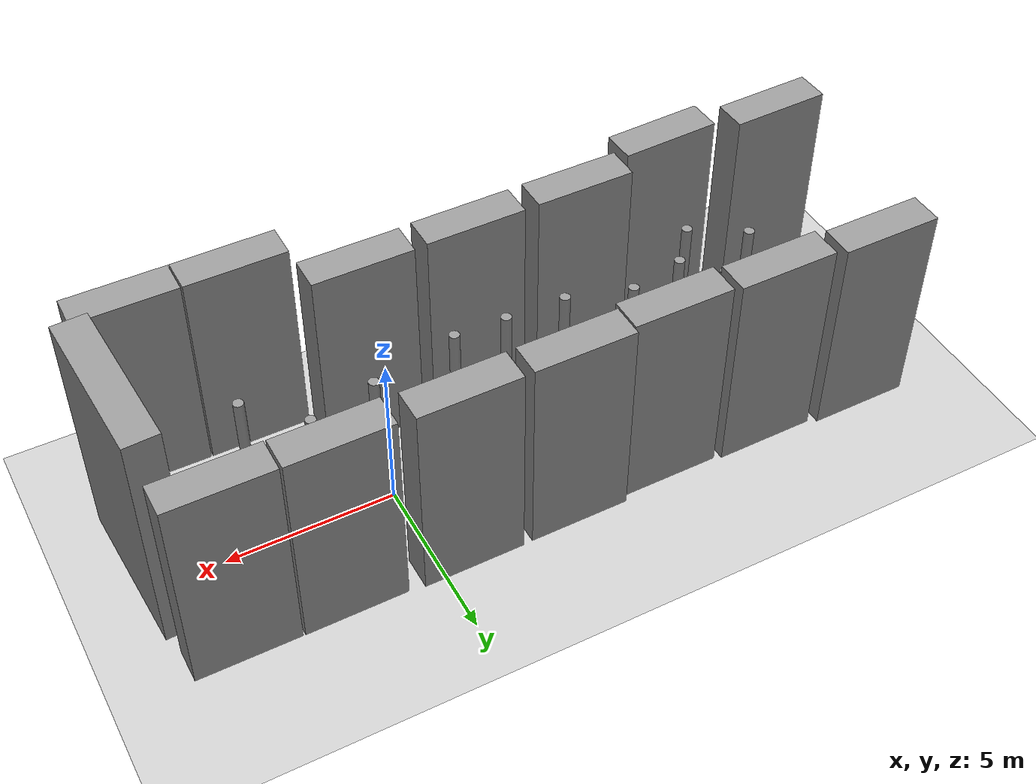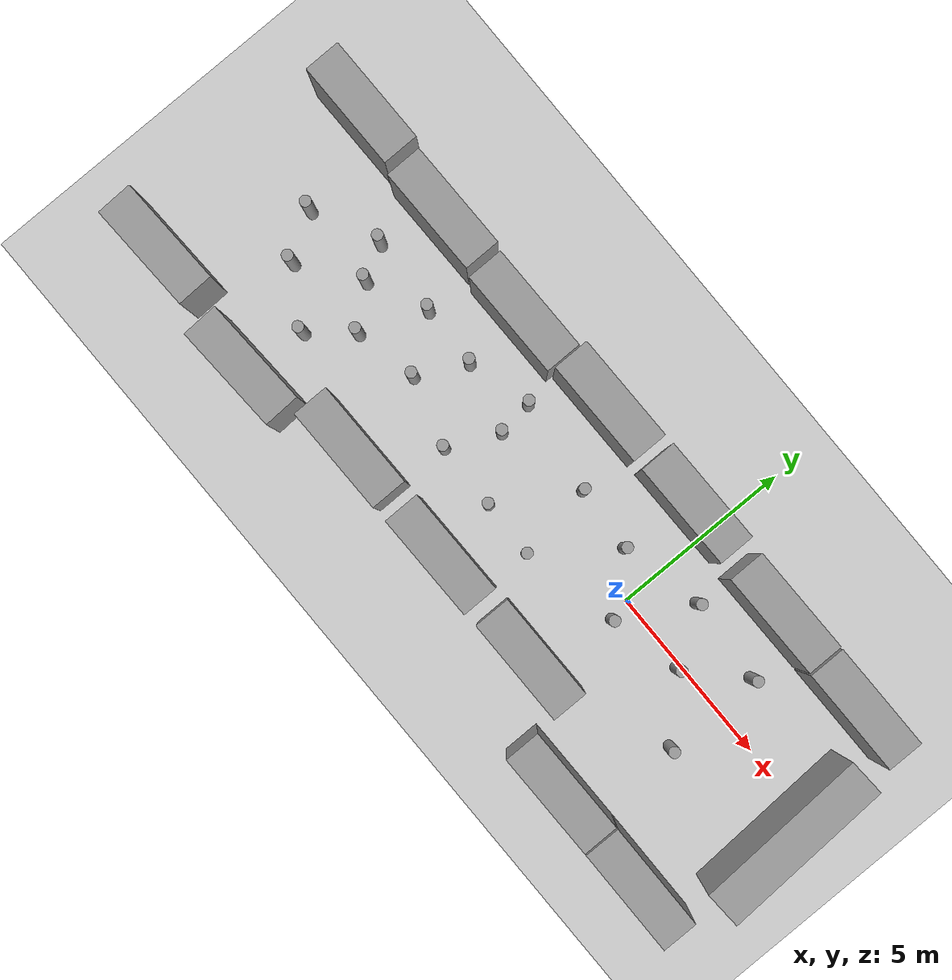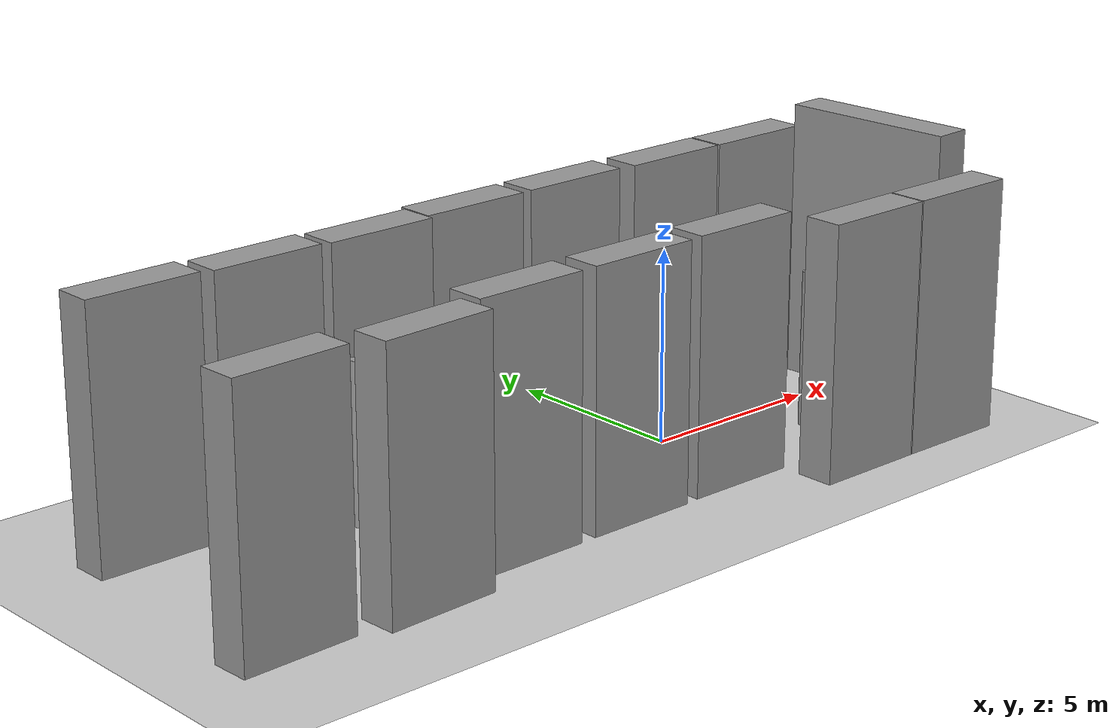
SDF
<sdf version="1.7">
 <world name="default">
  <model name="ground_plane">
   <static>1</static>
   <link name="link">
    <collision name="collision">
     <geometry><plane><normal>0 0 1</normal><size>100 100</size></plane></geometry>
     <surface>
      <contact><collide_bitmask>65535</collide_bitmask></contact>
      <friction><ode><mu>100</mu><mu2>50</mu2></ode></friction>
     </surface>
    </collision>
    <visual name="visual">
     <cast_shadows>0</cast_shadows>
     <geometry><plane><normal>0 0 1</normal><size>100 100</size></plane></geometry>
     <material>
      <script><uri>file://media/materials/scripts/gazebo.material</uri><name>Gazebo/Grey</name></script>
     </material>
    </visual>
   </link>
  </model>
  <gravity>0 0 -9.8</gravity>
  <magnetic_field>6e-06 2.3e-05 -4.2e-05</magnetic_field>
  <atmosphere type="adiabatic"/>
  <physics type="ode">
   <max_step_size>0.001</max_step_size>
   <real_time_factor>1</real_time_factor>
   <real_time_update_rate>1000</real_time_update_rate>
  </physics>
  <scene><ambient>0.4 0.4 0.4 1</ambient><background>0.7 0.7 0.7 1</background><shadows>1</shadows></scene>
  <spherical_coordinates>
   <surface_model>EARTH_WGS84</surface_model>
   <latitude_deg>0</latitude_deg>
   <longitude_deg>0</longitude_deg>
   <elevation>0</elevation>
   <heading_deg>0</heading_deg>
  </spherical_coordinates>
  <model name="unit_box_clone">
   <pose>2.5587 2.69503 3.24502 0 -1e-06 0.006784</pose>
   <link name="link">
    <inertial>
     <mass>1</mass>
     <inertia>
      <ixx>0.166667</ixx>
      <ixy>0</ixy>
      <ixz>0</ixz>
      <iyy>0.166667</iyy>
      <iyz>0</iyz>
      <izz>0.166667</izz>
     </inertia>
    </inertial>
    <collision name="collision"><geometry><box><size>2.97291 1 6.49004</size></box></geometry></collision>
    <visual name="visual">
     <geometry><box><size>2.97291 1 6.49004</size></box></geometry>
     <material>
      <script><name>Gazebo/Grey</name><uri>file://media/materials/scripts/gazebo.material</uri></script>
     </material>
    </visual>
   </link>
  </model>
  <model name="unit_box_clone_clone">
   <pose>5.59167 2.70093 3.24502 0 -1e-06 0.001837</pose>
   <link name="link">
    <inertial>
     <mass>1</mass>
     <inertia>
      <ixx>0.166667</ixx>
      <ixy>0</ixy>
      <ixz>0</ixz>
      <iyy>0.166667</iyy>
      <iyz>0</iyz>
      <izz>0.166667</izz>
     </inertia>
    </inertial>
    <collision name="collision"><geometry><box><size>2.97291 1 6.49004</size></box></geometry></collision>
    <visual name="visual">
     <geometry><box><size>2.97291 1 6.49004</size></box></geometry>
     <material>
      <script><name>Gazebo/Grey</name><uri>file://media/materials/scripts/gazebo.material</uri></script>
     </material>
    </visual>
   </link>
  </model>
  <model name="unit_box_clone_clone_0">
   <pose>-0.520348 -2.77164 3.24502 0 1e-06 0.001147</pose>
   <link name="link">
    <inertial>
     <mass>1</mass>
     <inertia>
      <ixx>0.166667</ixx>
      <ixy>0</ixy>
      <ixz>0</ixz>
      <iyy>0.166667</iyy>
      <iyz>0</iyz>
      <izz>0.166667</izz>
     </inertia>
    </inertial>
    <collision name="collision"><geometry><box><size>2.97291 1 6.49004</size></box></geometry></collision>
    <visual name="visual">
     <geometry><box><size>2.97291 1 6.49004</size></box></geometry>
     <material>
      <script><name>Gazebo/Grey</name><uri>file://media/materials/scripts/gazebo.material</uri></script>
     </material>
    </visual>
   </link>
  </model>
  <model name="unit_box_clone_clone_0_clone">
   <pose>2.44408 -4.2747 3.24502 0 1e-06 0.003904</pose>
   <link name="link">
    <inertial>
     <mass>1</mass>
     <inertia>
      <ixx>0.166667</ixx>
      <ixy>0</ixy>
      <ixz>0</ixz>
      <iyy>0.166667</iyy>
      <iyz>0</iyz>
      <izz>0.166667</izz>
     </inertia>
    </inertial>
    <collision name="collision"><geometry><box><size>2.97291 1 6.49004</size></box></geometry></collision>
    <visual name="visual">
     <geometry><box><size>2.97291 1 6.49004</size></box></geometry>
     <material>
      <script><name>Gazebo/Grey</name><uri>file://media/materials/scripts/gazebo.material</uri></script>
     </material>
    </visual>
   </link>
  </model>
  <model name="unit_box_clone_clone_0_clone_0">
   <pose>5.45943 -4.27486 3.24502 0 -1e-06 -0.004658</pose>
   <link name="link">
    <inertial>
     <mass>1</mass>
     <inertia>
      <ixx>0.166667</ixx>
      <ixy>0</ixy>
      <ixz>0</ixz>
      <iyy>0.166667</iyy>
      <iyz>0</iyz>
      <izz>0.166667</izz>
     </inertia>
    </inertial>
    <collision name="collision"><geometry><box><size>2.97291 1 6.49004</size></box></geometry></collision>
    <visual name="visual">
     <geometry><box><size>2.97291 1 6.49004</size></box></geometry>
     <material>
      <script><name>Gazebo/Grey</name><uri>file://media/materials/scripts/gazebo.material</uri></script>
     </material>
    </visual>
   </link>
  </model>
  <model name="unit_cylinder_clone">
   <pose>3.56228 -1.52634 2.03419 0 0 -0.060804</pose>
   <link name="link">
    <inertial>
     <mass>1</mass>
     <inertia><ixx>0.145833</ixx><ixy>0</ixy><ixz>0</ixz><iyy>0.145833</iyy><iyz>0</iyz><izz>0.125</izz></inertia>
    </inertial>
    <collision name="collision">
     <geometry><cylinder><radius>0.15453</radius><length>4.06839</length></cylinder></geometry>
    </collision>
    <visual name="visual">
     <geometry><cylinder><radius>0.15453</radius><length>4.06839</length></cylinder></geometry>
     <material>
      <script><name>Gazebo/Grey</name><uri>file://media/materials/scripts/gazebo.material</uri></script>
     </material>
    </visual>
   </link>
  </model>
  <model name="unit_cylinder_clone_0">
   <pose>3.53961 1.18714 2.03419 0 0 -0.04699</pose>
   <link name="link">
    <inertial>
     <mass>1</mass>
     <inertia><ixx>0.145833</ixx><ixy>0</ixy><ixz>0</ixz><iyy>0.145833</iyy><iyz>0</iyz><izz>0.125</izz></inertia>
    </inertial>
    <collision name="collision">
     <geometry><cylinder><radius>0.15453</radius><length>4.06839</length></cylinder></geometry>
    </collision>
    <visual name="visual">
     <geometry><cylinder><radius>0.15453</radius><length>4.06839</length></cylinder></geometry>
     <material>
      <script><name>Gazebo/Grey</name><uri>file://media/materials/scripts/gazebo.material</uri></script>
     </material>
    </visual>
   </link>
  </model>
  <model name="unit_box_0">
   <pose>6.91148 -0.713649 3.65057 0 -0 0.051224</pose>
   <link name="link">
    <inertial>
     <mass>1</mass>
     <inertia>
      <ixx>0.166667</ixx>
      <ixy>0</ixy>
      <ixz>0</ixz>
      <iyy>0.166667</iyy>
      <iyz>0</iyz>
      <izz>0.166667</izz>
     </inertia>
    </inertial>
    <collision name="collision"><geometry><box><size>1 4.71151 7.30114</size></box></geometry></collision>
    <visual name="visual">
     <geometry><box><size>1 4.71151 7.30114</size></box></geometry>
     <material>
      <script><name>Gazebo/Grey</name><uri>file://media/materials/scripts/gazebo.material</uri></script>
     </material>
    </visual>
   </link>
  </model>
  <light name="user_directional_light_0" type="directional">
   <pose>-4.64306 0.087706 1 0 -0 0</pose>
   <diffuse>0.5 0.5 0.5 1</diffuse>
   <specular>0.1 0.1 0.1 1</specular>
   <direction>0.1 0.1 -0.9</direction>
   <attenuation>
    <range>20</range>
    <constant>0.5</constant>
    <linear>0.01</linear>
    <quadratic>0.001</quadratic>
   </attenuation>
   <spot><inner_angle>0</inner_angle><outer_angle>0</outer_angle><falloff>0</falloff></spot>
  </light>
  <model name="unit_box_clone_clone_1_clone_0">
   <pose>-7.12188 2.49807 3.24502 0 -1e-06 0.005888</pose>
   <link name="link">
    <inertial>
     <mass>1</mass>
     <inertia>
      <ixx>0.166667</ixx>
      <ixy>0</ixy>
      <ixz>0</ixz>
      <iyy>0.166667</iyy>
      <iyz>0</iyz>
      <izz>0.166667</izz>
     </inertia>
    </inertial>
    <collision name="collision"><geometry><box><size>2.97291 1 6.49004</size></box></geometry></collision>
    <visual name="visual">
     <geometry><box><size>2.97291 1 6.49004</size></box></geometry>
     <material>
      <script><name>Gazebo/Grey</name><uri>file://media/materials/scripts/gazebo.material</uri></script>
     </material>
    </visual>
   </link>
  </model>
  <model name="unit_box_clone_clone_1_clone_3">
   <pose>-3.87243 -2.83099 3.24502 0 -1e-06 0.007547</pose>
   <link name="link">
    <inertial>
     <mass>1</mass>
     <inertia>
      <ixx>0.166667</ixx>
      <ixy>0</ixy>
      <ixz>0</ixz>
      <iyy>0.166667</iyy>
      <iyz>0</iyz>
      <izz>0.166667</izz>
     </inertia>
    </inertial>
    <collision name="collision"><geometry><box><size>2.97291 1 6.49004</size></box></geometry></collision>
    <visual name="visual">
     <geometry><box><size>2.97291 1 6.49004</size></box></geometry>
     <material>
      <script><name>Gazebo/Grey</name><uri>file://media/materials/scripts/gazebo.material</uri></script>
     </material>
    </visual>
   </link>
  </model>
  <model name="unit_box_clone_clone_1_clone_6">
   <pose>-14.0826 -3.35723 3.24502 1e-06 1e-06 0.032763</pose>
   <link name="link">
    <inertial>
     <mass>1</mass>
     <inertia>
      <ixx>0.166667</ixx>
      <ixy>0</ixy>
      <ixz>0</ixz>
      <iyy>0.166667</iyy>
      <iyz>0</iyz>
      <izz>0.166667</izz>
     </inertia>
    </inertial>
    <collision name="collision"><geometry><box><size>2.97291 1 6.49004</size></box></geometry></collision>
    <visual name="visual">
     <geometry><box><size>2.97291 1 6.49004</size></box></geometry>
     <material>
      <script><name>Gazebo/Grey</name><uri>file://media/materials/scripts/gazebo.material</uri></script>
     </material>
    </visual>
   </link>
  </model>
  <model name="unit_cylinder_clone_0_clone_clone_5">
   <pose>-5.44467 1.27229 2.03419 0 0 -0.058118</pose>
   <link name="link">
    <inertial>
     <mass>1</mass>
     <inertia><ixx>0.145833</ixx><ixy>0</ixy><ixz>0</ixz><iyy>0.145833</iyy><iyz>0</iyz><izz>0.125</izz></inertia>
    </inertial>
    <collision name="collision">
     <geometry><cylinder><radius>0.15453</radius><length>4.06839</length></cylinder></geometry>
    </collision>
    <visual name="visual">
     <geometry><cylinder><radius>0.15453</radius><length>4.06839</length></cylinder></geometry>
     <material>
      <script><name>Gazebo/Grey</name><uri>file://media/materials/scripts/gazebo.material</uri></script>
     </material>
    </visual>
   </link>
  </model>
  <model name="unit_cylinder_clone_0_clone_clone_10">
   <pose>-10.4795 0.094531 2.03419 0 0 -0.058911</pose>
   <link name="link">
    <inertial>
     <mass>1</mass>
     <inertia><ixx>0.145833</ixx><ixy>0</ixy><ixz>0</ixz><iyy>0.145833</iyy><iyz>0</iyz><izz>0.125</izz></inertia>
    </inertial>
    <collision name="collision">
     <geometry><cylinder><radius>0.15453</radius><length>4.06839</length></cylinder></geometry>
    </collision>
    <visual name="visual">
     <geometry><cylinder><radius>0.15453</radius><length>4.06839</length></cylinder></geometry>
     <material>
      <script><name>Gazebo/Grey</name><uri>file://media/materials/scripts/gazebo.material</uri></script>
     </material>
    </visual>
   </link>
  </model>
  <model name="unit_cylinder_clone_0_clone_clone_4_clone">
   <pose>-4.1331 -1.1358 2.03419 0 0 -0.056572</pose>
   <link name="link">
    <inertial>
     <mass>1</mass>
     <inertia><ixx>0.145833</ixx><ixy>0</ixy><ixz>0</ixz><iyy>0.145833</iyy><iyz>0</iyz><izz>0.125</izz></inertia>
    </inertial>
    <collision name="collision">
     <geometry><cylinder><radius>0.15453</radius><length>4.06839</length></cylinder></geometry>
    </collision>
    <visual name="visual">
     <geometry><cylinder><radius>0.15453</radius><length>4.06839</length></cylinder></geometry>
     <material>
      <script><name>Gazebo/Grey</name><uri>file://media/materials/scripts/gazebo.material</uri></script>
     </material>
    </visual>
   </link>
  </model>
  <model name="unit_cylinder_clone_0_clone_clone_4_clone_1">
   <pose>1.18445 1.34079 2.03419 0 0 -0.102565</pose>
   <link name="link">
    <inertial>
     <mass>1</mass>
     <inertia><ixx>0.145833</ixx><ixy>0</ixy><ixz>0</ixz><iyy>0.145833</iyy><iyz>0</iyz><izz>0.125</izz></inertia>
    </inertial>
    <collision name="collision">
     <geometry><cylinder><radius>0.15453</radius><length>4.06839</length></cylinder></geometry>
    </collision>
    <visual name="visual">
     <geometry><cylinder><radius>0.15453</radius><length>4.06839</length></cylinder></geometry>
     <material>
      <script><name>Gazebo/Grey</name><uri>file://media/materials/scripts/gazebo.material</uri></script>
     </material>
    </visual>
   </link>
  </model>
  <model name="unit_cylinder_clone_0_clone_clone_4_clone_3">
   <pose>-12.7826 0.161819 2.03419 0 0 -0.05969</pose>
   <link name="link">
    <inertial>
     <mass>1</mass>
     <inertia><ixx>0.145833</ixx><ixy>0</ixy><ixz>0</ixz><iyy>0.145833</iyy><iyz>0</iyz><izz>0.125</izz></inertia>
    </inertial>
    <collision name="collision">
     <geometry><cylinder><radius>0.15453</radius><length>4.06839</length></cylinder></geometry>
    </collision>
    <visual name="visual">
     <geometry><cylinder><radius>0.15453</radius><length>4.06839</length></cylinder></geometry>
     <material>
      <script><name>Gazebo/Grey</name><uri>file://media/materials/scripts/gazebo.material</uri></script>
     </material>
    </visual>
   </link>
  </model>
  <model name="unit_box_clone_clone_1_clone_3_clone_0">
   <pose>-10.4919 -3.62879 3.24502 -0 -1e-06 0.043505</pose>
   <link name="link">
    <inertial>
     <mass>1</mass>
     <inertia>
      <ixx>0.166667</ixx>
      <ixy>0</ixy>
      <ixz>0</ixz>
      <iyy>0.166667</iyy>
      <iyz>0</iyz>
      <izz>0.166667</izz>
     </inertia>
    </inertial>
    <collision name="collision"><geometry><box><size>2.97291 1 6.49004</size></box></geometry></collision>
    <visual name="visual">
     <geometry><box><size>2.97291 1 6.49004</size></box></geometry>
     <material>
      <script><name>Gazebo/Grey</name><uri>file://media/materials/scripts/gazebo.material</uri></script>
     </material>
    </visual>
   </link>
  </model>
  <model name="unit_cylinder_clone_0_clone_clone_1_clone_0">
   <pose>-2.55953 -1.17915 2.03419 0 0 -0.059837</pose>
   <link name="link">
    <inertial>
     <mass>1</mass>
     <inertia><ixx>0.145833</ixx><ixy>0</ixy><ixz>0</ixz><iyy>0.145833</iyy><iyz>0</iyz><izz>0.125</izz></inertia>
    </inertial>
    <collision name="collision">
     <geometry><cylinder><radius>0.15453</radius><length>4.06839</length></cylinder></geometry>
    </collision>
    <visual name="visual">
     <geometry><cylinder><radius>0.15453</radius><length>4.06839</length></cylinder></geometry>
     <material>
      <script><name>Gazebo/Grey</name><uri>file://media/materials/scripts/gazebo.material</uri></script>
     </material>
    </visual>
   </link>
  </model>
  <model name="unit_box_clone_clone_1_clone_0_clone">
   <pose>-10.2989 2.56916 3.24502 0 1e-06 0.00791</pose>
   <link name="link">
    <inertial>
     <mass>1</mass>
     <inertia>
      <ixx>0.166667</ixx>
      <ixy>0</ixy>
      <ixz>0</ixz>
      <iyy>0.166667</iyy>
      <iyz>0</iyz>
      <izz>0.166667</izz>
     </inertia>
    </inertial>
    <collision name="collision"><geometry><box><size>2.97291 1 6.49004</size></box></geometry></collision>
    <visual name="visual">
     <geometry><box><size>2.97291 1 6.49004</size></box></geometry>
     <material>
      <script><name>Gazebo/Grey</name><uri>file://media/materials/scripts/gazebo.material</uri></script>
     </material>
    </visual>
   </link>
  </model>
  <model name="unit_box_clone_clone_1_clone_0_clone_0">
   <pose>-13.5291 2.6871 3.24502 0 -1e-06 0.005083</pose>
   <link name="link">
    <inertial>
     <mass>1</mass>
     <inertia>
      <ixx>0.166667</ixx>
      <ixy>0</ixy>
      <ixz>0</ixz>
      <iyy>0.166667</iyy>
      <iyz>0</iyz>
      <izz>0.166667</izz>
     </inertia>
    </inertial>
    <collision name="collision"><geometry><box><size>2.97291 1 6.49004</size></box></geometry></collision>
    <visual name="visual">
     <geometry><box><size>2.97291 1 6.49004</size></box></geometry>
     <material>
      <script><name>Gazebo/Grey</name><uri>file://media/materials/scripts/gazebo.material</uri></script>
     </material>
    </visual>
   </link>
  </model>
  <model name="unit_box_clone_clone_1_clone_0_clone_1">
   <pose>-7.27806 -2.87242 3.24502 -0 -1e-06 0.006782</pose>
   <link name="link">
    <inertial>
     <mass>1</mass>
     <inertia>
      <ixx>0.166667</ixx>
      <ixy>0</ixy>
      <ixz>0</ixz>
      <iyy>0.166667</iyy>
      <iyz>0</iyz>
      <izz>0.166667</izz>
     </inertia>
    </inertial>
    <collision name="collision"><geometry><box><size>2.97291 1 6.49004</size></box></geometry></collision>
    <visual name="visual">
     <geometry><box><size>2.97291 1 6.49004</size></box></geometry>
     <material>
      <script><name>Gazebo/Grey</name><uri>file://media/materials/scripts/gazebo.material</uri></script>
     </material>
    </visual>
   </link>
  </model>
  <model name="unit_cylinder_clone_0_clone_clone_10_clone">
   <pose>-8.88854 0.84104 2.03419 0 0 -0.058613</pose>
   <link name="link">
    <inertial>
     <mass>1</mass>
     <inertia><ixx>0.145833</ixx><ixy>0</ixy><ixz>0</ixz><iyy>0.145833</iyy><iyz>0</iyz><izz>0.125</izz></inertia>
    </inertial>
    <collision name="collision">
     <geometry><cylinder><radius>0.15453</radius><length>4.06839</length></cylinder></geometry>
    </collision>
    <visual name="visual">
     <geometry><cylinder><radius>0.15453</radius><length>4.06839</length></cylinder></geometry>
     <material>
      <script><name>Gazebo/Grey</name><uri>file://media/materials/scripts/gazebo.material</uri></script>
     </material>
    </visual>
   </link>
  </model>
  <model name="unit_cylinder_clone_0_clone_clone_4_clone_0_clone">
   <pose>2.13221 -0.105776 2.03419 0 0 -0.062969</pose>
   <link name="link">
    <inertial>
     <mass>1</mass>
     <inertia><ixx>0.145833</ixx><ixy>0</ixy><ixz>0</ixz><iyy>0.145833</iyy><iyz>0</iyz><izz>0.125</izz></inertia>
    </inertial>
    <collision name="collision">
     <geometry><cylinder><radius>0.15453</radius><length>4.06839</length></cylinder></geometry>
    </collision>
    <visual name="visual">
     <geometry><cylinder><radius>0.15453</radius><length>4.06839</length></cylinder></geometry>
     <material>
      <script><name>Gazebo/Grey</name><uri>file://media/materials/scripts/gazebo.material</uri></script>
     </material>
    </visual>
   </link>
  </model>
  <model name="unit_cylinder_clone_0_clone_clone_4_clone_0_clone_0">
   <pose>-1.07873 0.818414 2.03419 0 0 -0.06107</pose>
   <link name="link">
    <inertial>
     <mass>1</mass>
     <inertia><ixx>0.145833</ixx><ixy>0</ixy><ixz>0</ixz><iyy>0.145833</iyy><iyz>0</iyz><izz>0.125</izz></inertia>
    </inertial>
    <collision name="collision">
     <geometry><cylinder><radius>0.15453</radius><length>4.06839</length></cylinder></geometry>
    </collision>
    <visual name="visual">
     <geometry><cylinder><radius>0.15453</radius><length>4.06839</length></cylinder></geometry>
     <material>
      <script><name>Gazebo/Grey</name><uri>file://media/materials/scripts/gazebo.material</uri></script>
     </material>
    </visual>
   </link>
  </model>
  <model name="unit_cylinder_clone_0_clone_clone_10_clone_clone_0">
   <pose>-7.193 0.78935 2.03419 0 0 -0.02038</pose>
   <link name="link">
    <inertial>
     <mass>1</mass>
     <inertia><ixx>0.145833</ixx><ixy>0</ixy><ixz>0</ixz><iyy>0.145833</iyy><iyz>0</iyz><izz>0.125</izz></inertia>
    </inertial>
    <collision name="collision">
     <geometry><cylinder><radius>0.15453</radius><length>4.06839</length></cylinder></geometry>
    </collision>
    <visual name="visual">
     <geometry><cylinder><radius>0.15453</radius><length>4.06839</length></cylinder></geometry>
     <material>
      <script><name>Gazebo/Grey</name><uri>file://media/materials/scripts/gazebo.material</uri></script>
     </material>
    </visual>
   </link>
  </model>
  <model name="unit_box_clone_clone_1_clone_0_clone_2">
   <pose>-0.861089 2.74633 3.24502 -0 1e-06 0.007396</pose>
   <link name="link">
    <inertial>
     <mass>1</mass>
     <inertia>
      <ixx>0.166667</ixx>
      <ixy>0</ixy>
      <ixz>0</ixz>
      <iyy>0.166667</iyy>
      <iyz>0</iyz>
      <izz>0.166667</izz>
     </inertia>
    </inertial>
    <collision name="collision"><geometry><box><size>2.97291 1 6.49004</size></box></geometry></collision>
    <visual name="visual">
     <geometry><box><size>2.97291 1 6.49004</size></box></geometry>
     <material>
      <script><name>Gazebo/Grey</name><uri>file://media/materials/scripts/gazebo.material</uri></script>
     </material>
    </visual>
   </link>
  </model>
  <model name="unit_box_clone_clone_1_clone_0_clone_3">
   <pose>-4.10568 2.70676 3.24502 0 -1e-06 0.006105</pose>
   <link name="link">
    <inertial>
     <mass>1</mass>
     <inertia>
      <ixx>0.166667</ixx>
      <ixy>0</ixy>
      <ixz>0</ixz>
      <iyy>0.166667</iyy>
      <iyz>0</iyz>
      <izz>0.166667</izz>
     </inertia>
    </inertial>
    <collision name="collision"><geometry><box><size>2.97291 1 6.49004</size></box></geometry></collision>
    <visual name="visual">
     <geometry><box><size>2.97291 1 6.49004</size></box></geometry>
     <material>
      <script><name>Gazebo/Grey</name><uri>file://media/materials/scripts/gazebo.material</uri></script>
     </material>
    </visual>
   </link>
  </model>
  <model name="unit_cylinder_clone_0_clone_clone_1_clone_0_clone">
   <pose>0.118252 -0.584617 2.03419 0 0 -0.086886</pose>
   <link name="link">
    <inertial>
     <mass>1</mass>
     <inertia><ixx>0.145833</ixx><ixy>0</ixy><ixz>0</ixz><iyy>0.145833</iyy><iyz>0</iyz><izz>0.125</izz></inertia>
    </inertial>
    <collision name="collision">
     <geometry><cylinder><radius>0.15453</radius><length>4.06839</length></cylinder></geometry>
    </collision>
    <visual name="visual">
     <geometry><cylinder><radius>0.15453</radius><length>4.06839</length></cylinder></geometry>
     <material>
      <script><name>Gazebo/Grey</name><uri>file://media/materials/scripts/gazebo.material</uri></script>
     </material>
    </visual>
   </link>
  </model>
  <model name="unit_cylinder_clone_0_clone_clone_1_clone_0_clone_0">
   <pose>-2.87395 0.941041 2.03419 0 0 -0.059607</pose>
   <link name="link">
    <inertial>
     <mass>1</mass>
     <inertia><ixx>0.145833</ixx><ixy>0</ixy><ixz>0</ixz><iyy>0.145833</iyy><iyz>0</iyz><izz>0.125</izz></inertia>
    </inertial>
    <collision name="collision">
     <geometry><cylinder><radius>0.15453</radius><length>4.06839</length></cylinder></geometry>
    </collision>
    <visual name="visual">
     <geometry><cylinder><radius>0.15453</radius><length>4.06839</length></cylinder></geometry>
     <material>
      <script><name>Gazebo/Grey</name><uri>file://media/materials/scripts/gazebo.material</uri></script>
     </material>
    </visual>
   </link>
  </model>
  <model name="unit_cylinder_clone_0_clone_clone_1_clone_0_clone_2">
   <pose>-10.9998 1.00017 2.03419 0 0 -0.058048</pose>
   <link name="link">
    <inertial>
     <mass>1</mass>
     <inertia><ixx>0.145833</ixx><ixy>0</ixy><ixz>0</ixz><iyy>0.145833</iyy><iyz>0</iyz><izz>0.125</izz></inertia>
    </inertial>
    <collision name="collision">
     <geometry><cylinder><radius>0.15453</radius><length>4.06839</length></cylinder></geometry>
    </collision>
    <visual name="visual">
     <geometry><cylinder><radius>0.15453</radius><length>4.06839</length></cylinder></geometry>
     <material>
      <script><name>Gazebo/Grey</name><uri>file://media/materials/scripts/gazebo.material</uri></script>
     </material>
    </visual>
   </link>
  </model>
  <model name="unit_cylinder_clone_0_clone_clone_10_clone_2">
   <pose>-5.95277 -1.08593 2.03419 0 0 -0.058512</pose>
   <link name="link">
    <inertial>
     <mass>1</mass>
     <inertia><ixx>0.145833</ixx><ixy>0</ixy><ixz>0</ixz><iyy>0.145833</iyy><iyz>0</iyz><izz>0.125</izz></inertia>
    </inertial>
    <collision name="collision">
     <geometry><cylinder><radius>0.15453</radius><length>4.06839</length></cylinder></geometry>
    </collision>
    <visual name="visual">
     <geometry><cylinder><radius>0.15453</radius><length>4.06839</length></cylinder></geometry>
     <material>
      <script><name>Gazebo/Grey</name><uri>file://media/materials/scripts/gazebo.material</uri></script>
     </material>
    </visual>
   </link>
  </model>
  <model name="unit_cylinder_clone_0_clone_clone_10_clone_clone_0_clone_0">
   <pose>-7.84694 -0.530755 2.03419 0 0 -0.020089</pose>
   <link name="link">
    <inertial>
     <mass>1</mass>
     <inertia><ixx>0.145833</ixx><ixy>0</ixy><ixz>0</ixz><iyy>0.145833</iyy><iyz>0</iyz><izz>0.125</izz></inertia>
    </inertial>
    <collision name="collision">
     <geometry><cylinder><radius>0.15453</radius><length>4.06839</length></cylinder></geometry>
    </collision>
    <visual name="visual">
     <geometry><cylinder><radius>0.15453</radius><length>4.06839</length></cylinder></geometry>
     <material>
      <script><name>Gazebo/Grey</name><uri>file://media/materials/scripts/gazebo.material</uri></script>
     </material>
    </visual>
   </link>
  </model>
  <model name="unit_cylinder_clone_0_clone_clone_10_clone_clone_0_clone_1">
   <pose>-5.3156 0.291281 2.03419 0 0 -0.020542</pose>
   <link name="link">
    <inertial>
     <mass>1</mass>
     <inertia><ixx>0.145833</ixx><ixy>0</ixy><ixz>0</ixz><iyy>0.145833</iyy><iyz>0</iyz><izz>0.125</izz></inertia>
    </inertial>
    <collision name="collision">
     <geometry><cylinder><radius>0.15453</radius><length>4.06839</length></cylinder></geometry>
    </collision>
    <visual name="visual">
     <geometry><cylinder><radius>0.15453</radius><length>4.06839</length></cylinder></geometry>
     <material>
      <script><name>Gazebo/Grey</name><uri>file://media/materials/scripts/gazebo.material</uri></script>
     </material>
    </visual>
   </link>
  </model>
  <model name="unit_cylinder_clone_0_clone_clone_4_clone_3_clone">
   <pose>-12.0376 -1.03828 2.03419 0 0 -0.059616</pose>
   <link name="link">
    <inertial>
     <mass>1</mass>
     <inertia><ixx>0.145833</ixx><ixy>0</ixy><ixz>0</ixz><iyy>0.145833</iyy><iyz>0</iyz><izz>0.125</izz></inertia>
    </inertial>
    <collision name="collision">
     <geometry><cylinder><radius>0.15453</radius><length>4.06839</length></cylinder></geometry>
    </collision>
    <visual name="visual">
     <geometry><cylinder><radius>0.15453</radius><length>4.06839</length></cylinder></geometry>
     <material>
      <script><name>Gazebo/Grey</name><uri>file://media/materials/scripts/gazebo.material</uri></script>
     </material>
    </visual>
   </link>
  </model>
  <model name="unit_cylinder_clone_0_clone_clone_4_clone_3_clone_0">
   <pose>-10.5061 -1.96799 2.03419 0 0 -0.05959</pose>
   <link name="link">
    <inertial>
     <mass>1</mass>
     <inertia><ixx>0.145833</ixx><ixy>0</ixy><ixz>0</ixz><iyy>0.145833</iyy><iyz>0</iyz><izz>0.125</izz></inertia>
    </inertial>
    <collision name="collision">
     <geometry><cylinder><radius>0.15453</radius><length>4.06839</length></cylinder></geometry>
    </collision>
    <visual name="visual">
     <geometry><cylinder><radius>0.15453</radius><length>4.06839</length></cylinder></geometry>
     <material>
      <script><name>Gazebo/Grey</name><uri>file://media/materials/scripts/gazebo.material</uri></script>
     </material>
    </visual>
   </link>
  </model>
  <model name="unit_cylinder_clone_0_clone_clone_4_clone_3_clone_1">
   <pose>-9.58495 -0.898443 2.03419 0 0 -0.05932</pose>
   <link name="link">
    <inertial>
     <mass>1</mass>
     <inertia><ixx>0.145833</ixx><ixy>0</ixy><ixz>0</ixz><iyy>0.145833</iyy><iyz>0</iyz><izz>0.125</izz></inertia>
    </inertial>
    <collision name="collision">
     <geometry><cylinder><radius>0.15453</radius><length>4.06839</length></cylinder></geometry>
    </collision>
    <visual name="visual">
     <geometry><cylinder><radius>0.15453</radius><length>4.06839</length></cylinder></geometry>
     <material>
      <script><name>Gazebo/Grey</name><uri>file://media/materials/scripts/gazebo.material</uri></script>
     </material>
    </visual>
   </link>
  </model>
 </world>
</sdf>
